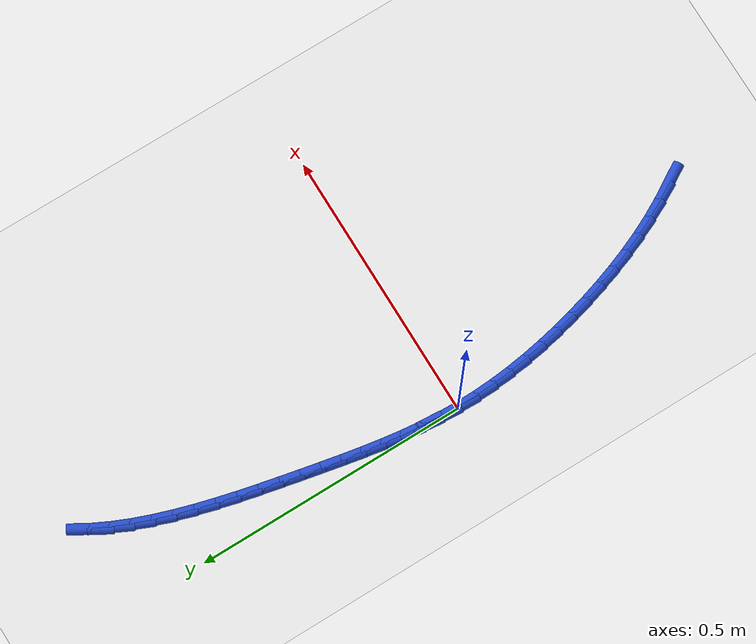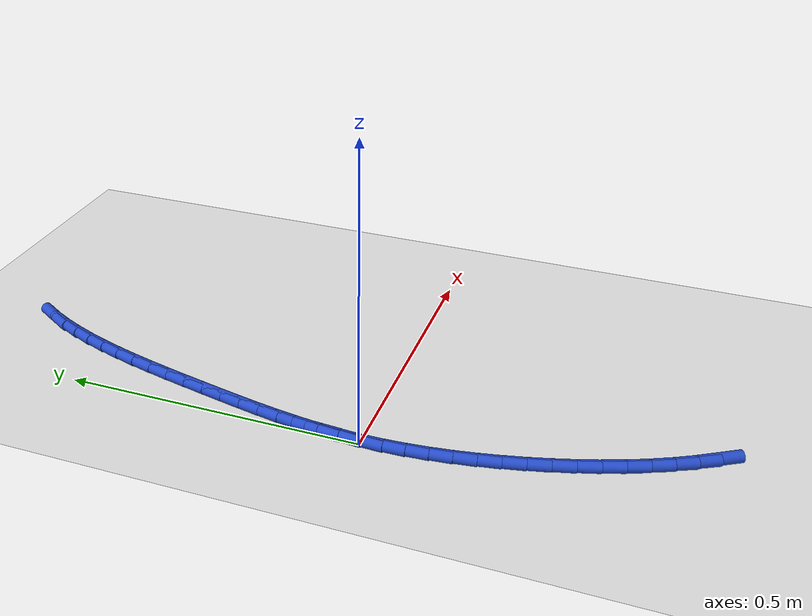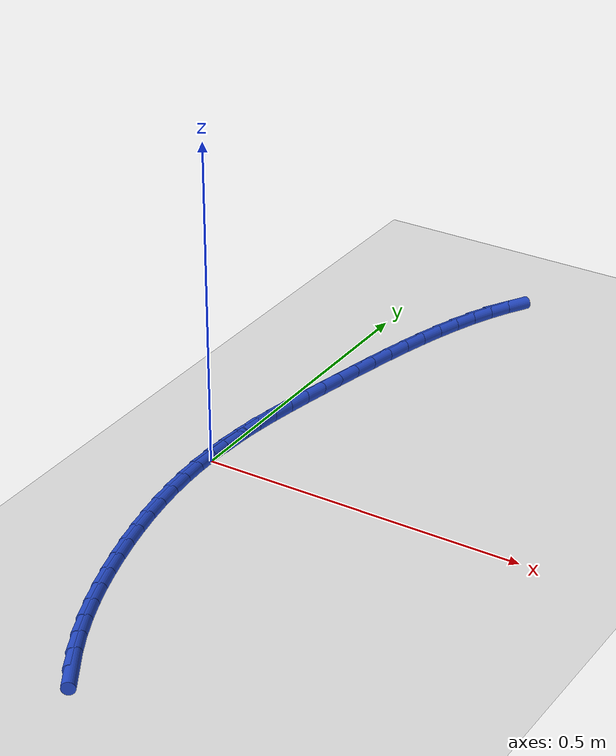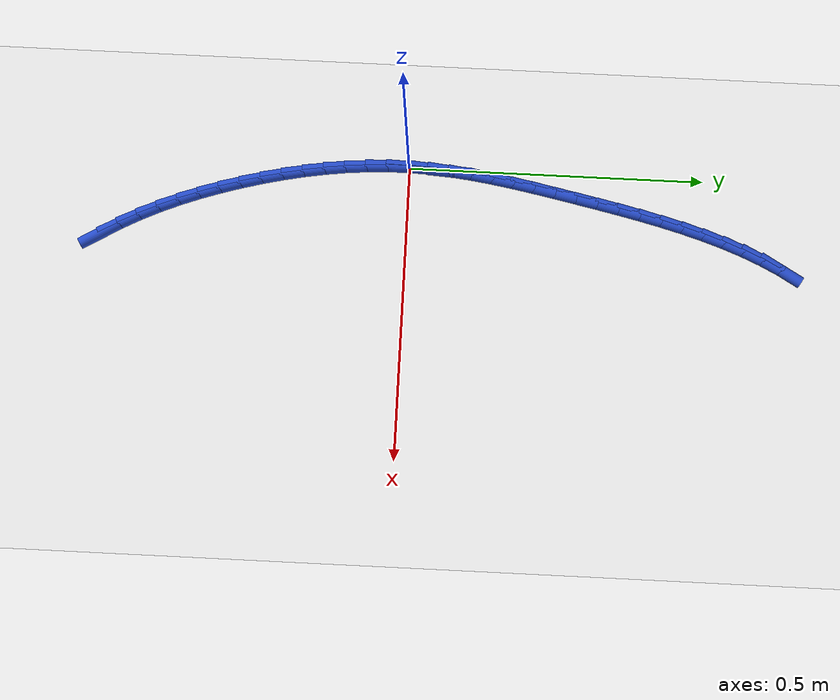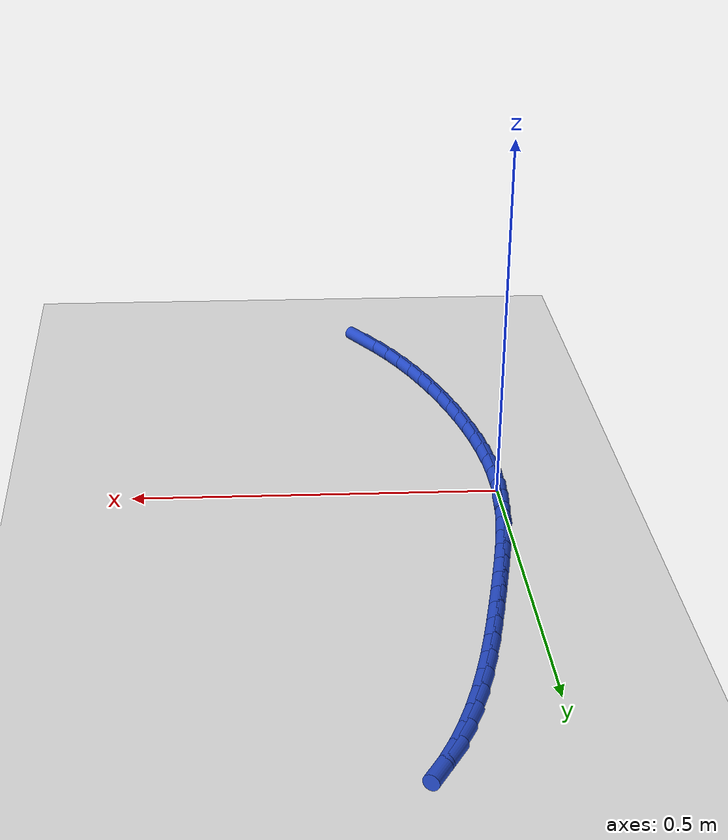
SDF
<sdf version="1.6">
 <world name="default">
  <model name="ground_plane">
   <static>1</static>
   <link name="link">
    <collision name="collision">
     <geometry><plane><normal>0 0 1</normal><size>100 100</size></plane></geometry>
     <surface><friction><ode><mu>100</mu><mu2>50</mu2></ode></friction></surface>
    </collision>
    <visual name="visual">
     <cast_shadows>0</cast_shadows>
     <geometry><plane><normal>0 0 1</normal><size>100 100</size></plane></geometry>
     <material>
      <script><uri>file://media/materials/scripts/gazebo.material</uri><name>Gazebo/WhiteGlow</name></script>
     </material>
    </visual>
   </link>
  </model>
  <model name="line">
   <link name="link_0">
    <pose>-5.204170427930421e-18 0.0 0.01 0 1.57 1.5325599736062685</pose>
    <collision name="collision">
     <geometry><cylinder><radius>0.01</radius><length>0.08</length></cylinder></geometry>
    </collision>
    <visual name="visual">
     <material>
      <script><name>Gazebo/Blue</name><uri>file://media/materials/scripts/gazebo.material</uri></script>
     </material>
     <geometry><cylinder><radius>0.01</radius><length>0.08</length></cylinder></geometry>
    </visual>
   </link>
   <link name="link_1">
    <pose>0.0013446943281101467 0.03515081406546295 0.01 0 1.57 1.4915713951892622</pose>
    <collision name="collision">
     <geometry><cylinder><radius>0.01</radius><length>0.08</length></cylinder></geometry>
    </collision>
    <visual name="visual">
     <material>
      <script><name>Gazebo/Blue</name><uri>file://media/materials/scripts/gazebo.material</uri></script>
     </material>
     <geometry><cylinder><radius>0.01</radius><length>0.08</length></cylinder></geometry>
    </visual>
   </link>
   <link name="link_2">
    <pose>0.004127677133646851 0.07020490328031338 0.01 0 1.57 1.456068017332591</pose>
    <collision name="collision">
     <geometry><cylinder><radius>0.01</radius><length>0.08</length></cylinder></geometry>
    </collision>
    <visual name="visual">
     <material>
      <script><name>Gazebo/Blue</name><uri>file://media/materials/scripts/gazebo.material</uri></script>
     </material>
     <geometry><cylinder><radius>0.01</radius><length>0.08</length></cylinder></geometry>
    </visual>
   </link>
   <link name="link_3">
    <pose>0.008164520072093059 0.10523649777379368 0.01 0 1.57 1.4262641740471038</pose>
    <collision name="collision">
     <geometry><cylinder><radius>0.01</radius><length>0.08</length></cylinder></geometry>
    </collision>
    <visual name="visual">
     <material>
      <script><name>Gazebo/Blue</name><uri>file://media/materials/scripts/gazebo.material</uri></script>
     </material>
     <geometry><cylinder><radius>0.01</radius><length>0.08</length></cylinder></geometry>
    </visual>
   </link>
   <link name="link_4">
    <pose>0.013270794798931737 0.14031982767514628 0.01 0 1.57 1.402248888660779</pose>
    <collision name="collision">
     <geometry><cylinder><radius>0.01</radius><length>0.08</length></cylinder></geometry>
    </collision>
    <visual name="visual">
     <material>
      <script><name>Gazebo/Blue</name><uri>file://media/materials/scripts/gazebo.material</uri></script>
     </material>
     <geometry><cylinder><radius>0.01</radius><length>0.08</length></cylinder></geometry>
    </visual>
   </link>
   <link name="link_5">
    <pose>0.019262072969645855 0.17552912311361354 0.01 0 1.57 1.3840144539972912</pose>
    <collision name="collision">
     <geometry><cylinder><radius>0.01</radius><length>0.08</length></cylinder></geometry>
    </collision>
    <visual name="visual">
     <material>
      <script><name>Gazebo/Blue</name><uri>file://media/materials/scripts/gazebo.material</uri></script>
     </material>
     <geometry><cylinder><radius>0.01</radius><length>0.08</length></cylinder></geometry>
    </visual>
   </link>
   <link name="link_6">
    <pose>0.02595392623971837 0.21093861421843793 0.01 0 1.57 1.3714825025432658</pose>
    <collision name="collision">
     <geometry><cylinder><radius>0.01</radius><length>0.08</length></cylinder></geometry>
    </collision>
    <visual name="visual">
     <material>
      <script><name>Gazebo/Blue</name><uri>file://media/materials/scripts/gazebo.material</uri></script>
     </material>
     <geometry><cylinder><radius>0.01</radius><length>0.08</length></cylinder></geometry>
    </visual>
   </link>
   <link name="link_7">
    <pose>0.03316192626463223 0.24662253111886168 0.01 0 1.57 1.3645251251879127</pose>
    <collision name="collision">
     <geometry><cylinder><radius>0.01</radius><length>0.08</length></cylinder></geometry>
    </collision>
    <visual name="visual">
     <material>
      <script><name>Gazebo/Blue</name><uri>file://media/materials/scripts/gazebo.material</uri></script>
     </material>
     <geometry><cylinder><radius>0.01</radius><length>0.08</length></cylinder></geometry>
    </visual>
   </link>
   <link name="link_8">
    <pose>0.04070164559634579 0.28265510317550424 0.01 0 1.57 1.3611633497001698</pose>
    <collision name="collision">
     <geometry><cylinder><radius>0.01</radius><length>0.08</length></cylinder></geometry>
    </collision>
    <visual name="visual">
     <material>
      <script><name>Gazebo/Blue</name><uri>file://media/materials/scripts/gazebo.material</uri></script>
     </material>
     <geometry><cylinder><radius>0.01</radius><length>0.08</length></cylinder></geometry>
    </visual>
   </link>
   <link name="link_9">
    <pose>0.04844718711913222 0.319060376816062 0.01 0 1.57 1.3545885935136082</pose>
    <collision name="collision">
     <geometry><cylinder><radius>0.01</radius><length>0.08</length></cylinder></geometry>
    </collision>
    <visual name="visual">
     <material>
      <script><name>Gazebo/Blue</name><uri>file://media/materials/scripts/gazebo.material</uri></script>
     </material>
     <geometry><cylinder><radius>0.01</radius><length>0.08</length></cylinder></geometry>
    </visual>
   </link>
   <link name="link_10">
    <pose>0.056489567014441376 0.355676420616888 0.01 0 1.57 1.343238359815529</pose>
    <collision name="collision">
     <geometry><cylinder><radius>0.01</radius><length>0.08</length></cylinder></geometry>
    </collision>
    <visual name="visual">
     <material>
      <script><name>Gazebo/Blue</name><uri>file://media/materials/scripts/gazebo.material</uri></script>
     </material>
     <geometry><cylinder><radius>0.01</radius><length>0.08</length></cylinder></geometry>
    </visual>
   </link>
   <link name="link_11">
    <pose>0.06497003967180633 0.3922982297507394 0.01 0 1.57 1.327002091465118</pose>
    <collision name="collision">
     <geometry><cylinder><radius>0.01</radius><length>0.08</length></cylinder></geometry>
    </collision>
    <visual name="visual">
     <material>
      <script><name>Gazebo/Blue</name><uri>file://media/materials/scripts/gazebo.material</uri></script>
     </material>
     <geometry><cylinder><radius>0.01</radius><length>0.08</length></cylinder></geometry>
    </visual>
   </link>
   <link name="link_12">
    <pose>0.07402985948076006 0.42872079939037333 0.01 0 1.57 1.3056495504041556</pose>
    <collision name="collision">
     <geometry><cylinder><radius>0.01</radius><length>0.08</length></cylinder></geometry>
    </collision>
    <visual name="visual">
     <material>
      <script><name>Gazebo/Blue</name><uri>file://media/materials/scripts/gazebo.material</uri></script>
     </material>
     <geometry><cylinder><radius>0.01</radius><length>0.08</length></cylinder></geometry>
    </visual>
   </link>
   <link name="link_13">
    <pose>0.08381028083083567 0.464739124708547 0.01 0 1.57 1.2788329640013834</pose>
    <collision name="collision">
     <geometry><cylinder><radius>0.01</radius><length>0.08</length></cylinder></geometry>
    </collision>
    <visual name="visual">
     <material>
      <script><name>Gazebo/Blue</name><uri>file://media/materials/scripts/gazebo.material</uri></script>
     </material>
     <geometry><cylinder><radius>0.01</radius><length>0.08</length></cylinder></geometry>
    </visual>
   </link>
   <link name="link_14">
    <pose>0.09445255811156615 0.5001482008780173 0.01 0 1.57 1.2460886551369075</pose>
    <collision name="collision">
     <geometry><cylinder><radius>0.01</radius><length>0.08</length></cylinder></geometry>
    </collision>
    <visual name="visual">
     <material>
      <script><name>Gazebo/Blue</name><uri>file://media/materials/scripts/gazebo.material</uri></script>
     </material>
     <geometry><cylinder><radius>0.01</radius><length>0.08</length></cylinder></geometry>
    </visual>
   </link>
   <link name="link_15">
    <pose>0.10609794571248463 0.5347430230715414 0.01 0 1.57 1.2068417800955957</pose>
    <collision name="collision">
     <geometry><cylinder><radius>0.01</radius><length>0.08</length></cylinder></geometry>
    </collision>
    <visual name="visual">
     <material>
      <script><name>Gazebo/Blue</name><uri>file://media/materials/scripts/gazebo.material</uri></script>
     </material>
     <geometry><cylinder><radius>0.01</radius><length>0.08</length></cylinder></geometry>
    </visual>
   </link>
   <link name="link_16">
    <pose>0.11888769802312407 0.5683185864618768 0.01 0 1.57 1.160419736200274</pose>
    <collision name="collision">
     <geometry><cylinder><radius>0.01</radius><length>0.08</length></cylinder></geometry>
    </collision>
    <visual name="visual">
     <material>
      <script><name>Gazebo/Blue</name><uri>file://media/materials/scripts/gazebo.material</uri></script>
     </material>
     <geometry><cylinder><radius>0.01</radius><length>0.08</length></cylinder></geometry>
    </visual>
   </link>
   <link name="link_17">
    <pose>0.13296306943301756 0.6006698862217801 0.01 0 1.57 1.1060826234121506</pose>
    <collision name="collision">
     <geometry><cylinder><radius>0.01</radius><length>0.08</length></cylinder></geometry>
    </collision>
    <visual name="visual">
     <material>
      <script><name>Gazebo/Blue</name><uri>file://media/materials/scripts/gazebo.material</uri></script>
     </material>
     <geometry><cylinder><radius>0.01</radius><length>0.08</length></cylinder></geometry>
    </visual>
   </link>
   <link name="link_18">
    <pose>0.1484653143316981 0.6315919175240087 0.01 0 1.57 1.0430824991105236</pose>
    <collision name="collision">
     <geometry><cylinder><radius>0.01</radius><length>0.08</length></cylinder></geometry>
    </collision>
    <visual name="visual">
     <material>
      <script><name>Gazebo/Blue</name><uri>file://media/materials/scripts/gazebo.material</uri></script>
     </material>
     <geometry><cylinder><radius>0.01</radius><length>0.08</length></cylinder></geometry>
    </visual>
   </link>
   <link name="link_205">
    <pose>0.13985953554875327 -0.5128155839274191 0.01 0 1.57 -1.0290386265024831</pose>
    <collision name="collision">
     <geometry><cylinder><radius>0.01</radius><length>0.08</length></cylinder></geometry>
    </collision>
    <visual name="visual">
     <material>
      <script><name>Gazebo/Blue</name><uri>file://media/materials/scripts/gazebo.material</uri></script>
     </material>
     <geometry><cylinder><radius>0.01</radius><length>0.08</length></cylinder></geometry>
    </visual>
   </link>
   <link name="link_206">
    <pose>0.12154013495099471 -0.4823756558625958 0.01 0 1.57 -1.0807838738706346</pose>
    <collision name="collision">
     <geometry><cylinder><radius>0.01</radius><length>0.08</length></cylinder></geometry>
    </collision>
    <visual name="visual">
     <material>
      <script><name>Gazebo/Blue</name><uri>file://media/materials/scripts/gazebo.material</uri></script>
     </material>
     <geometry><cylinder><radius>0.01</radius><length>0.08</length></cylinder></geometry>
    </visual>
   </link>
   <link name="link_207">
    <pose>0.10475597440085234 -0.4509095325033758 0.01 0 1.57 -1.128257319393973</pose>
    <collision name="collision">
     <geometry><cylinder><radius>0.01</radius><length>0.08</length></cylinder></geometry>
    </collision>
    <visual name="visual">
     <material>
      <script><name>Gazebo/Blue</name><uri>file://media/materials/scripts/gazebo.material</uri></script>
     </material>
     <geometry><cylinder><radius>0.01</radius><length>0.08</length></cylinder></geometry>
    </visual>
   </link>
   <link name="link_208">
    <pose>0.0894183569759782 -0.4185439046376297 0.01 0 1.57 -1.171588591839267</pose>
    <collision name="collision">
     <geometry><cylinder><radius>0.01</radius><length>0.08</length></cylinder></geometry>
    </collision>
    <visual name="visual">
     <material>
      <script><name>Gazebo/Blue</name><uri>file://media/materials/scripts/gazebo.material</uri></script>
     </material>
     <geometry><cylinder><radius>0.01</radius><length>0.08</length></cylinder></geometry>
    </visual>
   </link>
   <link name="link_209">
    <pose>0.07543858575402311 -0.38540546305322537 0.01 0 1.57 -1.2109514903295067</pose>
    <collision name="collision">
     <geometry><cylinder><radius>0.01</radius><length>0.08</length></cylinder></geometry>
    </collision>
    <visual name="visual">
     <material>
      <script><name>Gazebo/Blue</name><uri>file://media/materials/scripts/gazebo.material</uri></script>
     </material>
     <geometry><cylinder><radius>0.01</radius><length>0.08</length></cylinder></geometry>
    </visual>
   </link>
   <link name="link_210">
    <pose>0.06272796381263833 -0.35162089853803236 0.01 0 1.57 -1.246542223934226</pose>
    <collision name="collision">
     <geometry><cylinder><radius>0.01</radius><length>0.08</length></cylinder></geometry>
    </collision>
    <visual name="visual">
     <material>
      <script><name>Gazebo/Blue</name><uri>file://media/materials/scripts/gazebo.material</uri></script>
     </material>
     <geometry><cylinder><radius>0.01</radius><length>0.08</length></cylinder></geometry>
    </visual>
   </link>
   <link name="link_211">
    <pose>0.051197794229475124 -0.3173169018799191 0.01 0 1.57 -1.2785625276207522</pose>
    <collision name="collision">
     <geometry><cylinder><radius>0.01</radius><length>0.08</length></cylinder></geometry>
    </collision>
    <visual name="visual">
     <material>
      <script><name>Gazebo/Blue</name><uri>file://media/materials/scripts/gazebo.material</uri></script>
     </material>
     <geometry><cylinder><radius>0.01</radius><length>0.08</length></cylinder></geometry>
    </visual>
   </link>
   <link name="link_212">
    <pose>0.04075938008218452 -0.2826201638667542 0.01 0 1.57 -1.3079726882176164</pose>
    <collision name="collision">
     <geometry><cylinder><radius>0.01</radius><length>0.08</length></cylinder></geometry>
    </collision>
    <visual name="visual">
     <material>
      <script><name>Gazebo/Blue</name><uri>file://media/materials/scripts/gazebo.material</uri></script>
     </material>
     <geometry><cylinder><radius>0.01</radius><length>0.08</length></cylinder></geometry>
    </visual>
   </link>
   <link name="link_213">
    <pose>0.03134973642381633 -0.24764622338164122 0.01 0 1.57 -1.3382434994468317</pose>
    <collision name="collision">
     <geometry><cylinder><radius>0.01</radius><length>0.08</length></cylinder></geometry>
    </collision>
    <visual name="visual">
     <material>
      <script><name>Gazebo/Blue</name><uri>file://media/materials/scripts/gazebo.material</uri></script>
     </material>
     <geometry><cylinder><radius>0.01</radius><length>0.08</length></cylinder></geometry>
    </visual>
   </link>
   <link name="link_214">
    <pose>0.02301689479413993 -0.21246246877594382 0.01 0 1.57 -1.3704036794722605</pose>
    <collision name="collision">
     <geometry><cylinder><radius>0.01</radius><length>0.08</length></cylinder></geometry>
    </collision>
    <visual name="visual">
     <material>
      <script><name>Gazebo/Blue</name><uri>file://media/materials/scripts/gazebo.material</uri></script>
     </material>
     <geometry><cylinder><radius>0.01</radius><length>0.08</length></cylinder></geometry>
    </visual>
   </link>
   <link name="link_215">
    <pose>0.015838842627490846 -0.17712329580601047 0.01 0 1.57 -1.4045887868567588</pose>
    <collision name="collision">
     <geometry><cylinder><radius>0.01</radius><length>0.08</length></cylinder></geometry>
    </collision>
    <visual name="visual">
     <material>
      <script><name>Gazebo/Blue</name><uri>file://media/materials/scripts/gazebo.material</uri></script>
     </material>
     <geometry><cylinder><radius>0.01</radius><length>0.08</length></cylinder></geometry>
    </visual>
   </link>
   <link name="link_216">
    <pose>0.009893567817021663 -0.1416831000291889 0.01 0 1.57 -1.4409332659040797</pose>
    <collision name="collision">
     <geometry><cylinder><radius>0.01</radius><length>0.08</length></cylinder></geometry>
    </collision>
    <visual name="visual">
     <material>
      <script><name>Gazebo/Blue</name><uri>file://media/materials/scripts/gazebo.material</uri></script>
     </material>
     <geometry><cylinder><radius>0.01</radius><length>0.08</length></cylinder></geometry>
    </visual>
   </link>
   <link name="link_217">
    <pose>0.005259058255885375 -0.10619627700282917 0.01 0 1.57 -1.4795665358849666</pose>
    <collision name="collision">
     <geometry><cylinder><radius>0.01</radius><length>0.08</length></cylinder></geometry>
    </collision>
    <visual name="visual">
     <material>
      <script><name>Gazebo/Blue</name><uri>file://media/materials/scripts/gazebo.material</uri></script>
     </material>
     <geometry><cylinder><radius>0.01</radius><length>0.08</length></cylinder></geometry>
    </visual>
   </link>
   <link name="link_218">
    <pose>0.0020133018372345303 -0.07071722228427899 0.01 0 1.57 -1.520607804428282</pose>
    <collision name="collision">
     <geometry><cylinder><radius>0.01</radius><length>0.08</length></cylinder></geometry>
    </collision>
    <visual name="visual">
     <material>
      <script><name>Gazebo/Blue</name><uri>file://media/materials/scripts/gazebo.material</uri></script>
     </material>
     <geometry><cylinder><radius>0.01</radius><length>0.08</length></cylinder></geometry>
    </visual>
   </link>
   <link name="link_219">
    <pose>0.0002342864542218331 -0.03530033143088675 0.01 0 1.57 -1.564159476522327</pose>
    <collision name="collision">
     <geometry><cylinder><radius>0.01</radius><length>0.08</length></cylinder></geometry>
    </collision>
    <visual name="visual">
     <material>
      <script><name>Gazebo/Blue</name><uri>file://media/materials/scripts/gazebo.material</uri></script>
     </material>
     <geometry><cylinder><radius>0.01</radius><length>0.08</length></cylinder></geometry>
    </visual>
   </link>
   <link name="link_220">
    <pose>5.204170427930421e-18 -4.163336342344337e-17 0.01 0 1.57 1.5312935450330472</pose>
    <collision name="collision">
     <geometry><cylinder><radius>0.01</radius><length>0.08</length></cylinder></geometry>
    </collision>
    <visual name="visual">
     <material>
      <script><name>Gazebo/Blue</name><uri>file://media/materials/scripts/gazebo.material</uri></script>
     </material>
     <geometry><cylinder><radius>0.01</radius><length>0.08</length></cylinder></geometry>
    </visual>
   </link>
   <link name="link_221">
    <pose>0.0013884303677217172 0.03512937645103003 0.01 0 1.57 1.482522637276115</pose>
    <collision name="collision">
     <geometry><cylinder><radius>0.01</radius><length>0.08</length></cylinder></geometry>
    </collision>
    <visual name="visual">
     <material>
      <script><name>Gazebo/Blue</name><uri>file://media/materials/scripts/gazebo.material</uri></script>
     </material>
     <geometry><cylinder><radius>0.01</radius><length>0.08</length></cylinder></geometry>
    </visual>
   </link>
   <link name="link_222">
    <pose>0.004477565450539815 0.07003340236485847 0.01 0 1.57 1.5069485153795898</pose>
    <collision name="collision">
     <geometry><cylinder><radius>0.01</radius><length>0.08</length></cylinder></geometry>
    </collision>
    <visual name="visual">
     <material>
      <script><name>Gazebo/Blue</name><uri>file://media/materials/scripts/gazebo.material</uri></script>
     </material>
     <geometry><cylinder><radius>0.01</radius><length>0.08</length></cylinder></geometry>
    </visual>
   </link>
  </model>
 </world>
</sdf>
